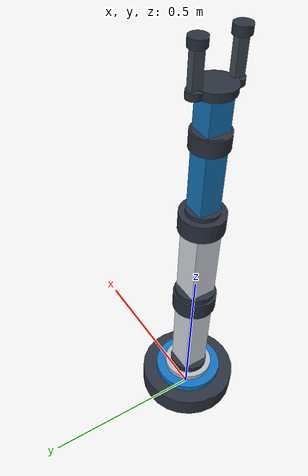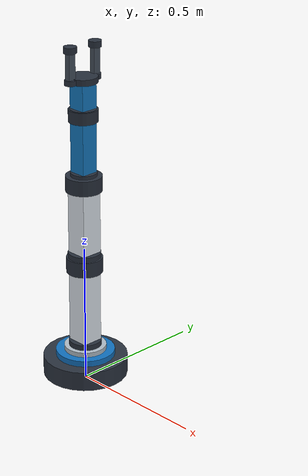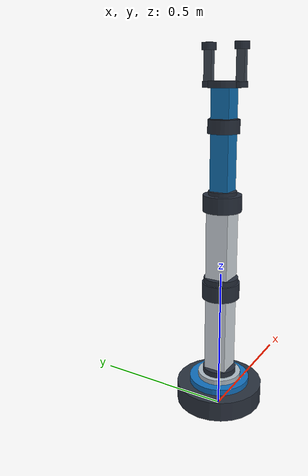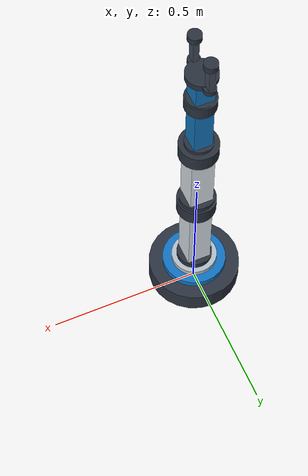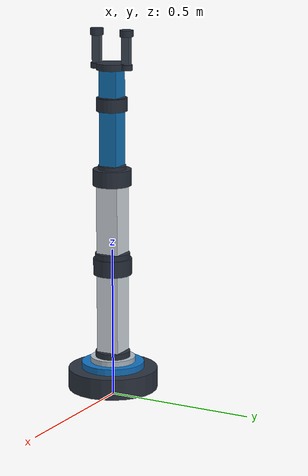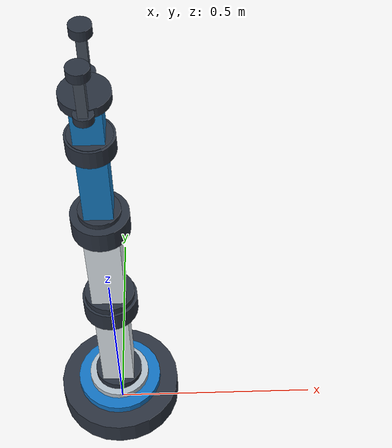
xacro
<?xml version="1.0"?>
<robot xmlns:xacro="http://www.ros.org/wiki/xacro" name="cucei_bot">
  <!-- CUCEI-BOT V1: version visual mejorada. Unidades SI. -->
  <!-- Se conservan joints, colisiones y propiedades inerciales originales. -->
  <xacro:macro name="box_link" params="name sx sy sz mass color">
    <link name="${name}">
      <!-- Geometria visual: varias piezas por eslabon, independiente de collision/inertial. -->
      <visual>
        <geometry><box size="${sx*0.78} ${sy*0.78} ${sz*0.94}"/></geometry>
        <material name="${name}_paint"><color rgba="${color}"/></material>
      </visual>
      <visual>
        <origin xyz="0 0 ${sz*0.46}"/>
        <geometry><cylinder radius="${max(sx,sy)*0.64}" length="${min(sz*0.18,0.055)}"/></geometry>
        <material name="${name}_joint"><color rgba="0.16 0.19 0.24 1"/></material>
      </visual>
      <visual>
        <origin xyz="0 0 ${-sz*0.46}"/>
        <geometry><cylinder radius="${max(sx,sy)*0.58}" length="${min(sz*0.15,0.04)}"/></geometry>
        <material name="${name}_joint"/>
      </visual>
      <collision><geometry><box size="${sx} ${sy} ${sz}"/></geometry></collision>
      <inertial><mass value="${mass}"/><origin xyz="0 0 0"/><inertia ixx="${mass*(sy*sy+sz*sz)/12}" ixy="0" ixz="0" iyy="${mass*(sx*sx+sz*sz)/12}" iyz="0" izz="${mass*(sx*sx+sy*sy)/12}"/></inertial>
    </link>
  </xacro:macro>
  <!-- Base circular decorativa: la masa y colision siguen siendo las del modelo original. -->
  <link name="base_link">
    <visual><geometry><cylinder radius="0.15" length="0.07"/></geometry><material name="base_dark"><color rgba="0.17 0.20 0.25 1"/></material></visual>
    <visual><origin xyz="0 0 0.044"/><geometry><cylinder radius="0.105" length="0.025"/></geometry><material name="base_blue"><color rgba="0.07 0.45 0.76 1"/></material></visual>
    <visual><origin xyz="0 0 0.064"/><geometry><cylinder radius="0.075" length="0.02"/></geometry><material name="base_metal"><color rgba="0.70 0.75 0.79 1"/></material></visual>
    <collision><geometry><box size="0.3 0.3 0.12"/></geometry></collision>
    <inertial><mass value="5"/><origin xyz="0 0 0"/><inertia ixx="0.0435" ixy="0" ixz="0" iyy="0.0435" iyz="0" izz="0.075"/></inertial>
  </link>
  <xacro:box_link name="shoulder_link" sx="0.10" sy="0.10" sz="0.34" mass="1.2" color="0.88 0.91 0.94 1"/>
  <xacro:box_link name="upper_arm_link" sx="0.10" sy="0.10" sz="0.30" mass="1.0" color="0.88 0.91 0.94 1"/>
  <xacro:box_link name="forearm_link" sx="0.08" sy="0.08" sz="0.24" mass="0.7" color="0.08 0.48 0.76 1"/>
  <xacro:box_link name="wrist_link" sx="0.08" sy="0.08" sz="0.12" mass="0.35" color="0.08 0.48 0.76 1"/>
  <xacro:box_link name="gripper_left" sx="0.025" sy="0.035" sz="0.12" mass="0.08" color="0.27 0.31 0.36 1"/>
  <xacro:box_link name="gripper_right" sx="0.025" sy="0.035" sz="0.12" mass="0.08" color="0.27 0.31 0.36 1"/>
  <!-- Tapas laterales de articulaciones: detalle visual, sin masa adicional. -->
  <!-- Las tapas de cada box_link simulan rodamientos y carcasas. -->
  <!-- Anchored to ground in Gazebo for stable inspection; RViz ignores the world geometry. -->
  <link name="world"/>
  <joint name="world_fixed" type="fixed"><parent link="world"/><child link="base_link"/><origin xyz="0 0 0.06"/></joint>
  <joint name="joint_1" type="revolute"><parent link="base_link"/><child link="shoulder_link"/><origin xyz="0 0 0.23"/><axis xyz="0 0 1"/><limit lower="-3.14" upper="3.14" effort="30" velocity="1"/><dynamics damping="1" friction="0.2"/></joint>
  <joint name="joint_2" type="revolute"><parent link="shoulder_link"/><child link="upper_arm_link"/><origin xyz="0 0 0.32"/><axis xyz="0 1 0"/><limit lower="-1.2" upper="1.2" effort="30" velocity="1"/><dynamics damping="1" friction="0.2"/></joint>
  <joint name="joint_3" type="revolute"><parent link="upper_arm_link"/><child link="forearm_link"/><origin xyz="0 0 0.27"/><axis xyz="0 1 0"/><limit lower="-1.5" upper="1.5" effort="20" velocity="1"/><dynamics damping="1" friction="0.2"/></joint>
  <joint name="joint_4" type="revolute"><parent link="forearm_link"/><child link="wrist_link"/><origin xyz="0 0 0.18"/><axis xyz="1 0 0"/><limit lower="-2" upper="2" effort="10" velocity="1"/><dynamics damping="0.5" friction="0.1"/></joint>
  <joint name="left_finger_fixed" type="fixed"><parent link="wrist_link"/><child link="gripper_left"/><origin xyz="0 0.055 0.11"/></joint>
  <joint name="right_finger_fixed" type="fixed"><parent link="wrist_link"/><child link="gripper_right"/><origin xyz="0 -0.055 0.11"/></joint>
  <!-- Gazebo Classic: keep the base anchored to the world, and avoid uncontrolled falling joints. -->
  <gazebo reference="base_link"><material>Gazebo/Grey</material></gazebo>
</robot>
